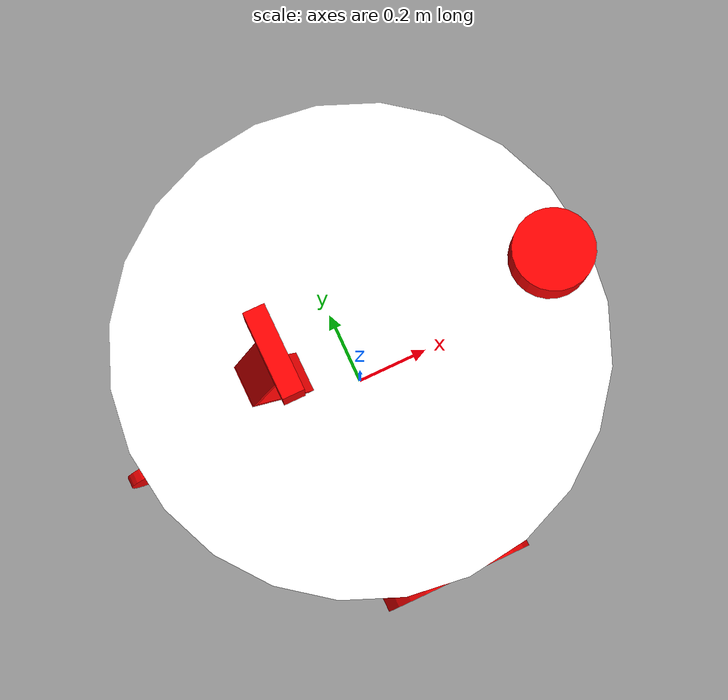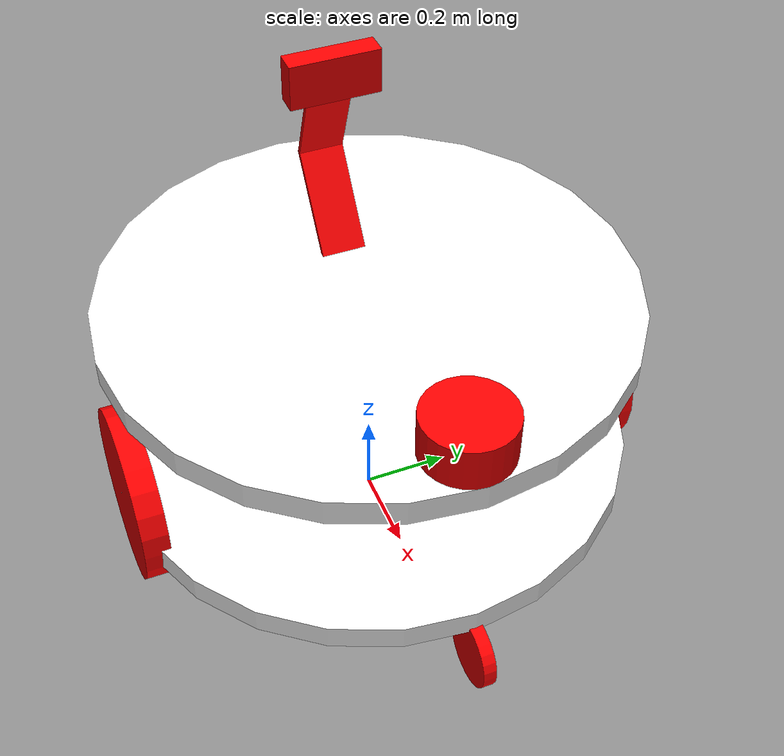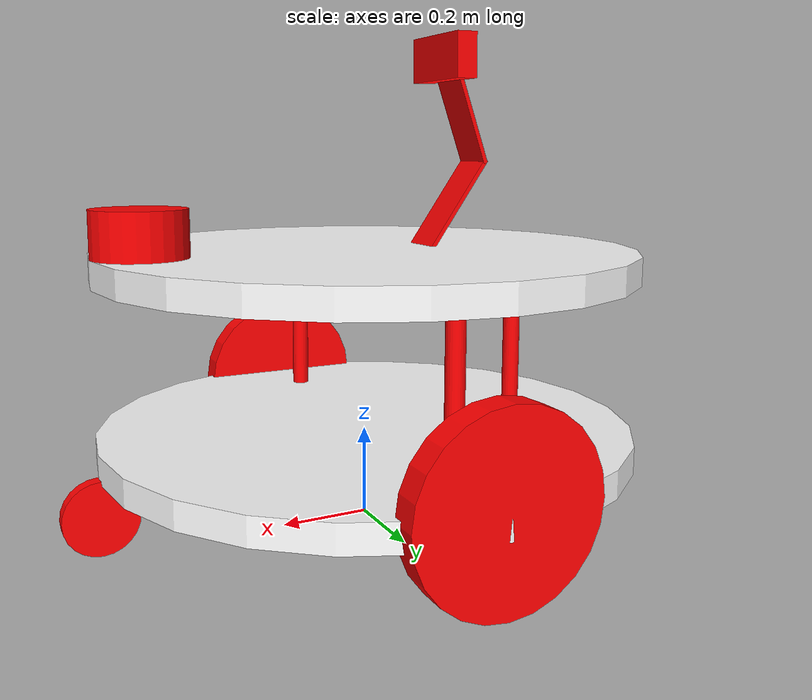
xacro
<?xml version="1.0"?>
<robot xmlns:xacro="http://www.ros.org/wiki/xacro" name="my_bot">

    <link name="base_footprint">

    </link>

    <link name="base_link">
        <inertial>
            <origin xyz="0.0 0.0 0.0" rpy="0.0 0.0 0.0"/>
            <mass value="2.0"/>
            <inertia ixx="0.32" ixy="0.0" ixz="0.0" iyy="0.32" iyz="0.0" izz="0.36"/>
        </inertial>
        <visual name="">
            <origin xyz="0.0 0.0 0.0" rpy="0.0 0.0 0.0"/>
            <geometry>
                <cylinder radius="0.6" length="0.06"/>
            </geometry>
            <material name="white">
                <color rgba="1.0 1.0 1.0 1.0"/>
                <texture filename=""/>
            </material>
        </visual>
        <collision>
            <origin xyz="0.0 0.0 0.0" rpy="0.0 0.0 0.0"/>
            <geometry>
                <cylinder radius="0.6" length="0.06"/>
            </geometry>
        </collision>
    </link>

     <joint name="base_link_joint" type="fixed">
        <origin xyz="0.0 0.0 0.19" rpy="0.0 0.0 0.0"/>
        <parent link="base_footprint"/>
        <child link="base_link"/>
        <axis xyz="0.0 0.0 0.0"/>
        <limit lower="0.0" upper="0.0" effort="0.0" velocity="0.0"/>
     </joint>

     <gazebo>
        <plugin name="differential_drive_controller" filename="libgazebo_ros_diff_drive.so">
            <!-- Plugin update rate in Hz -->
            <updateRate>20</updateRate>

            <!-- Name of left joint -->
            <leftJoint>left_wheel_joint</leftJoint>

            <!-- Name of right joint -->
            <rightJoint>right_wheel_joint</rightJoint>

            <!-- The distance from the center of one wheel to the other, in meters -->
            <wheelSeparation>1.14</wheelSeparation>

            <!-- Diameter of the wheels, in meters -->
            <wheelDiameter>0.4</wheelDiameter>

            <!-- Wheel acceleration, in rad/s^2 -->
            <wheelAcceleration>1.0</wheelAcceleration>

            <!-- Maximum torque which the wheels can produce, in Nm -->
            <wheelTorque>20</wheelTorque>

            <!-- Topic to receive geometry_msgs/Twist message commands -->
            <commandTopic>cmd_vel</commandTopic>

            <!-- Topic to publish nav_msgs/Odometry messages -->
            <odometryTopic>odom</odometryTopic>

            <!-- Odometry frame -->
            <odometryFrame>odom</odometryFrame>

            <!-- Robot frame to calculate odometry from -->
            <!-- Change this to base_link -->
            <robotBaseFrame>base_link</robotBaseFrame>

            <!-- Set to true to publish transforms for the wheel links -->
            <publishWheelTF>true</publishWheelTF>

            <!-- Set to true to publish transforms for the odometry -->
            <publishOdom>true</publishOdom>

            <!-- Set to true to publish sensor_msgs/JointState on /joint_states for the wheel joints -->
            <publishWheelJointState>true</publishWheelJointState>

            <!-- Set to true to swap right and left wheels -->
            <legacyMode>false</legacyMode>
        </plugin>
    </gazebo>

      <link name="plate_link2">
        <inertial>
            <origin xyz="0.0 0.0 0.0" rpy="0.0 0.0 0.0"/>
            <mass value="2.0"/>
            <inertia ixx="0.32" ixy="0.0" ixz="0.0" iyy="0.32" iyz="0.0" izz="0.36"/>
        </inertial>
        <visual name="">
            <origin xyz="0.0 0.0 0.0" rpy="0.0 0.0 0.0"/>
            <geometry>
                <cylinder radius="0.6" length="0.06"/>
            </geometry>
            <material name="white">
                <color rgba="1.0 1.0 1.0 1.0"/>
                <texture filename=""/>
            </material>
        </visual>
        <collision>
            <origin xyz="0.0 0.0 0.0" rpy="0.0 0.0 0.0"/>
            <geometry>
                <cylinder radius="0.6" length="0.06"/>
            </geometry>
        </collision>
    </link>

    <joint name="plate_joint2" type="fixed">
        <origin xyz="0.0 -0.4 0.2" rpy="0.0 0.0 0.0"/>
        <parent link="stick_link"/>
        <child link="plate_link2"/>
        <axis xyz="0.0 0.0 0.0"/>
        <limit lower="0.0" upper="0.0" effort="0.0" velocity="0.0"/>
    </joint>

     <link name="laser_sensor_link">
        <inertial>
            <origin xyz="0.0 0.0 0.0" rpy="0.0 0.0 0.0"/>
            <mass value="0.2"/>
            <inertia ixx="0.00116667" ixy="0.0" ixz="0.0" iyy="0.00019167" iyz="0.0" izz="0.00019167"/>
        </inertial>
        <visual name="">
            <origin xyz="0.0 0.0 0.0" rpy="0.0 0.0 0.0"/>
            <geometry>
                <cylinder radius="0.1" length="0.1"/>
            </geometry>
            <material name="">
                <color rgba="1.0 0.0 0.0 1.0"/>
                <texture filename=""/>
            </material>
        </visual>
        <collision>
            <origin xyz="0.0 0.0 0.0" rpy="0.0 0.0 0.0"/>
            <geometry>
                <box size="0.0 0.0 0.0"/>
            </geometry>
        </collision>
     </link>

     <joint name="laser_sensor_joint" type="fixed">
        <origin xyz="0.5 0.0 0.08" rpy="0.0 0.0 0.0"/>
        <parent link="plate_link2"/>
        <child link="laser_sensor_link"/>
        <axis xyz="0.0 0.0 0.0"/>
        <limit lower="0.0" upper="0.0" effort="0.0" velocity="0.0"/>
     </joint>

     <!-- hokuyo -->
  <gazebo reference="laser_sensor_link">
    <sensor type="ray" name="head_hokuyo_sensor">
      <pose>0 0 0 0 0 0</pose>
      <visualize>true</visualize>
      <update_rate>40</update_rate>
      <ray>
        <scan>
          <horizontal>
            <samples>720</samples>
            <resolution>1</resolution>
            <min_angle>-1.570796</min_angle>
            <max_angle>1.570796</max_angle>
          </horizontal>
        </scan>
        <range>
          <min>0.10</min>
          <max>30.0</max>
          <resolution>0.01</resolution>
        </range>
        <noise>
          <type>gaussian</type>
          <mean>0.0</mean>
          <stddev>0.01</stddev>
        </noise>
      </ray>
      <plugin name="gazebo_ros_head_hokuyo_controller" filename="libgazebo_ros_laser.so">
        <topicName>/scan</topicName>
        <frameName>laser_sensor_link</frameName>
      </plugin>
    </sensor>
  </gazebo>

     <link name="camera_strape">
        <inertial>
            <origin xyz="0.0 0.0 0.0" rpy="0.0 0.0 0.0"/>
            <mass value="0.1"/>
            <inertia ixx="0.0000083333" ixy="0.0" ixz="0.0" iyy="0.0004166667" iyz="0.0" izz="0.0004166667"/>
        </inertial>
        <visual name="">
            <origin xyz="0.0 0.0 0.0" rpy="0.0 0.0 0.0"/>
            <geometry>
                <box size="0.3 0.1 0.01"/>
            </geometry>
            <material name="">
                <color rgba="1.0 0.0 0.0 1.0"/>
                <texture filename=""/>
            </material>
        </visual>
        <collision>
            <origin xyz="0.0 0.0 0.0" rpy="0.0 0.0 0.0"/>
            <geometry>
                 <box size="0.3 0.1 0.01"/>
            </geometry>
        </collision>
     </link>

     <joint name="camera_joint" type="fixed">
        <origin xyz="-0.2 0.0 0.1" rpy="0.0 4.1 0.0"/>
        <parent link="plate_link2"/>
        <child link="camera_strape"/>
        <axis xyz="0.0 0.0 0.0"/>
        <limit lower="0.0" upper="0.0" effort="0.0" velocity="0.0"/>
     </joint>

     <link name="camera_strape2">
        <inertial>
            <origin xyz="0.0 0.0 0.0" rpy="0.0 0.0 0.0"/>
            <mass value="0.1"/>
            <inertia ixx="0.0000083333" ixy="0.0" ixz="0.0" iyy="0.0004166667" iyz="0.0" izz="0.0004166667"/>
        </inertial>
        <visual name="">
            <origin xyz="0.0 0.0 0.0" rpy="0.0 0.0 0.0"/>
            <geometry>
                <box size="0.3 0.1 0.01"/>
            </geometry>
            <material name="">
                <color rgba="1.0 0.0 0.0 1.0"/>
                <texture filename=""/>
            </material>
        </visual>
        <collision>
            <origin xyz="0.0 0.0 0.0" rpy="0.0 0.0 0.0"/>
            <geometry>
                 <box size="0.3 0.1 0.01"/>
            </geometry>
        </collision>
     </link>

     <joint name="camera_joint2" type="fixed">
        <origin xyz="0.23 0.0 -0.12" rpy="0.0 4.1 0.0"/>
        <parent link="camera_strape"/>
        <child link="camera_strape2"/>
        <axis xyz="0.0 0.0 0.0"/>
        <limit lower="0.0" upper="0.0" effort="0.0" velocity="0.0"/>
     </joint>

     <link name="OAK_link">
        <inertial>
            <origin xyz="0.0 0.0 0.0" rpy="0.0 0.0 0.0"/>
            <mass value="0.1"/>
            <inertia ixx="0.00010833" ixy="0.0" ixz="0.0" iyy="0.00002083" iyz="0.0" izz="0.00002083"/>
        </inertial>
        <visual name="">
            <origin xyz="0.0 0.0 0.0" rpy="0.0 0.0 0.0"/>
            <geometry>
                <box size="0.1 0.2 0.05"/>
            </geometry>
            <material name="">
                <color rgba="1.0 0.0 0.0 1.0"/>
                <texture filename=""/>
            </material>
        </visual>
        <collision>
            <origin xyz="0.0 0.0 0.0" rpy="0.0 0.0 0.0"/>
            <geometry>
                <box size="0.0 0.0 0.0"/>
            </geometry>
        </collision>
     </link>

     <joint name="OAK_joint" type="fixed">
        <origin xyz="-0.1 0.0 0.0" rpy="0.0 -0.33250 0.0"/>
        <parent link="camera_strape2"/>
        <child link="OAK_link"/>
        <axis xyz="0.0 0.0 0.0"/>
        <limit lower="0.0" upper="0.0" effort="0.0" velocity="0.0"/>
     </joint>

    <link name="stick_link">
        <inertial>
            <origin xyz="0.0 0.0 0.0" rpy="0.0 0.0 0.0"/>
            <mass value="0.3"/>
            <inertia ixx="0.0016" ixy="0.0" ixz="0.0" iyy="0.0016" iyz="0.0" izz="0.0012"/>
        </inertial>
        <visual name="">
            <origin xyz="0.0 0.0 0.0" rpy="0.0 0.0 0.0"/>
            <geometry>
                <cylinder radius="0.02" length="0.4"/>
            </geometry>
            <material name="">
                <color rgba="1.0 0.0 0.0 1.0"/>
                <texture filename=""/>
            </material>
        </visual>
        <collision>
            <origin xyz="0.0 0.0 0.0" rpy="0.0 0.0 0.0"/>
            <geometry>
                <box size="0.0 0.0 0.0"/>
            </geometry>
        </collision>
    </link>

    <joint name="stick_joint" type="fixed">
        <origin xyz="0.0 0.4 0.2" rpy="0.0 0.0 0.0"/>
        <parent link="base_link"/>
        <child link="stick_link"/>
        <axis xyz="0.0 0.0 0.0"/>
        <limit lower="0.0" upper="0.0" effort="0.0" velocity="0.0"/>
    </joint>

     <link name="stick_link2">
        <inertial>
            <origin xyz="0.0 0.0 0.0" rpy="0.0 0.0 0.0"/>
            <mass value="0.3"/>
            <inertia ixx="0.0016" ixy="0.0" ixz="0.0" iyy="0.0016" iyz="0.0" izz="0.0012"/>
        </inertial>
        <visual name="">
            <origin xyz="0.0 0.0 0.0" rpy="0.0 0.0 0.0"/>
            <geometry>
                <cylinder radius="0.02" length="0.4"/>
            </geometry>
            <material name="">
                <color rgba="1.0 0.0 0.0 1.0"/>
                <texture filename=""/>
            </material>
        </visual>
        <collision>
            <origin xyz="0.0 0.0 0.0" rpy="0.0 0.0 0.0"/>
            <geometry>
                <box size="0.0 0.0 0.0"/>
            </geometry>
        </collision>
    </link>

    <joint name="stick_joint2" type="fixed">
        <origin xyz="0.0 -0.4 0.2" rpy="0.0 0.0 0.0"/>
        <parent link="base_link"/>
        <child link="stick_link2"/>
        <axis xyz="0.0 0.0 0.0"/>
        <limit lower="0.0" upper="0.0" effort="0.0" velocity="0.0"/>
    </joint>

    <link name="stick_link3">
        <inertial>
            <origin xyz="0.0 0.0 0.0" rpy="0.0 0.0 0.0"/>
            <mass value="0.3"/>
           <inertia ixx="0.0016" ixy="0.0" ixz="0.0" iyy="0.0016" iyz="0.0" izz="0.0012"/>
        </inertial>
        <visual name="">
            <origin xyz="0.0 0.0 0.0" rpy="0.0 0.0 0.0"/>
            <geometry>
                <cylinder radius="0.02" length="0.4"/>
            </geometry>
            <material name="">
                <color rgba="1.0 0.0 0.0 1.0"/>
                <texture filename=""/>
            </material>
        </visual>
        <collision>
            <origin xyz="0.0 0.0 0.0" rpy="0.0 0.0 0.0"/>
            <geometry>
                <box size="0.0 0.0 0.0"/>
            </geometry>
        </collision>
    </link>

    <joint name="stick_joint3" type="fixed">
        <origin xyz="-0.4 0.0 0.2" rpy="0.0 0.0 0.0"/>
        <parent link="base_link"/>
        <child link="stick_link3"/>
        <axis xyz="0.0 0.0 0.0"/>
        <limit lower="0.0" upper="0.0" effort="0.0" velocity="0.0"/>
    </joint>

     <link name="right_wheel">
        <inertial>
            <origin xyz="0.0 0.0 0.0" rpy="0.0 0.0 0.0"/>
            <mass value="0.6"/>
            <inertia ixx="0.1" ixy="0.0" ixz="0.0" iyy="0.1" iyz="0.0" izz="0.3"/>
        </inertial>
        <visual name="">
            <origin xyz="0.0 0.0 0.0" rpy="0.0 0.0 0.0"/>
            <geometry>
                <cylinder radius="0.2" length="0.06"/>
            </geometry>
            <material name="red">
                <color rgba="1.0 0.0 0.0 1.0"/>
                <texture filename=""/>
            </material>
        </visual>
        <collision>
            <origin xyz="0.0 0.0 0.0" rpy="0.0 0.0 0.0"/>
            <geometry>
                 <cylinder radius="0.2" length="0.06"/>
            </geometry>
        </collision>
     </link>

     <joint name="right_wheel_joint" type="continuous">
        <origin xyz="0.0 -0.57 0.02" rpy="4.70 0.0 0.0"/>
        <parent link="base_link"/>
        <child link="right_wheel"/>
        <axis xyz="0.0 0.0 1.0"/>
        <limit lower="0.0" upper="0.0" effort="0.0" velocity="0.0"/>
     </joint>

     <link name="left_wheel">
        <inertial>
            <origin xyz="0.0 0.0 0.0" rpy="0.0 0.0 0.0"/>
            <mass value="0.6"/>
            <inertia ixx="0.1" ixy="0.0" ixz="0.0" iyy="0.1" iyz="0.0" izz="0.3"/>
        </inertial>
        <visual name="">
            <origin xyz="0.0 0.0 0.0" rpy="0.0 0.0 0.0"/>
            <geometry>
                <cylinder radius="0.2" length="0.06"/>
            </geometry>
            <material name="red">
                <color rgba="1.0 0.0 0.0 1.0"/>
                <texture filename=""/>
            </material>
        </visual>
        <collision>
            <origin xyz="0.0 0.0 0.0" rpy="0.0 0.0 0.0"/>
            <geometry>
               <cylinder radius="0.2" length="0.06"/>
            </geometry>
        </collision>
     </link>

     <joint name="left_wheel_joint" type="continuous">
        <origin xyz="0.0 0.57 0.02" rpy="4.70 0.0 0.0"/>
        <parent link="base_link"/>
        <child link="left_wheel"/>
        <axis xyz="0.0 0.0 1.0"/>
        <limit lower="0.0" upper="0.0" effort="0.0" velocity="0.0"/>
     </joint>

     <link name="front_caster_wheel">
        <inertial>
            <origin xyz="0.0 0.0 0.0" rpy="0.0 0.0 0.0"/>
            <mass value="0.2"/>
            <inertia ixx="0.000825" ixy="0.0" ixz="0.0" iyy="0.000825" iyz="0.001" izz="0.0"/>
        </inertial>
        <visual name="">
            <origin xyz="0.0 0.0 0.0" rpy="0.0 0.0 0.0"/>
            <geometry>
                <cylinder radius="0.08" length="0.03"/>
            </geometry>
            <material name="red">
                <color rgba="1.0 0.0 0.0 1.0"/>
                <texture filename=""/>
            </material>
        </visual>
        <collision>
            <origin xyz="0.0 0.0 0.0" rpy="0.0 0.0 0.0"/>
            <geometry>
               <cylinder radius="0.07" length="0.03"/>
            </geometry>
        </collision>
     </link>

     <joint name="front_caster_wheel_joint" type="continuous">
        <origin xyz="0.6 0.0 -0.1" rpy="-1.58 0.0 0.0"/>
        <parent link="base_link"/>
        <child link="front_caster_wheel"/>
        <axis xyz="0.0 0.0 1.0"/>
        <limit lower="0.0" upper="0.0" effort="0.0" velocity="0.0"/>
     </joint>

     <link name="back_caster_wheel">
        <inertial>
            <origin xyz="0.0 0.0 0.0" rpy="0.0 0.0 0.0"/>
            <mass value="0.2"/>
            <inertia ixx="0.000825" ixy="0.0" ixz="0.0" iyy="0.000825" iyz="0.001" izz="0.0"/>
        </inertial>
        <visual name="">
            <origin xyz="0.0 0.0 0.0" rpy="0.0 0.0 0.0"/>
            <geometry>
                <cylinder radius="0.08" length="0.03"/>
            </geometry>
            <material name="red">
                <color rgba="1.0 0.0 0.0 1.0"/>
                <texture filename=""/>
            </material>
        </visual>
        <collision>
            <origin xyz="0.0 0.0 0.0" rpy="0.0 0.0 0.0"/>
            <geometry>
               <cylinder radius="0.07" length="0.03"/>
            </geometry>
        </collision>
     </link>

     <joint name="back_caster_wheel_joint" type="continuous">
        <origin xyz="-0.6 0.0 -0.1" rpy="-1.58 0.0 0.0"/>
        <parent link="base_link"/>
        <child link="back_caster_wheel"/>
        <axis xyz="0.0 0.0 1.0"/>
        <limit lower="0.0" upper="0.0" effort="0.0" velocity="0.0"/>
     </joint>

</robot>
